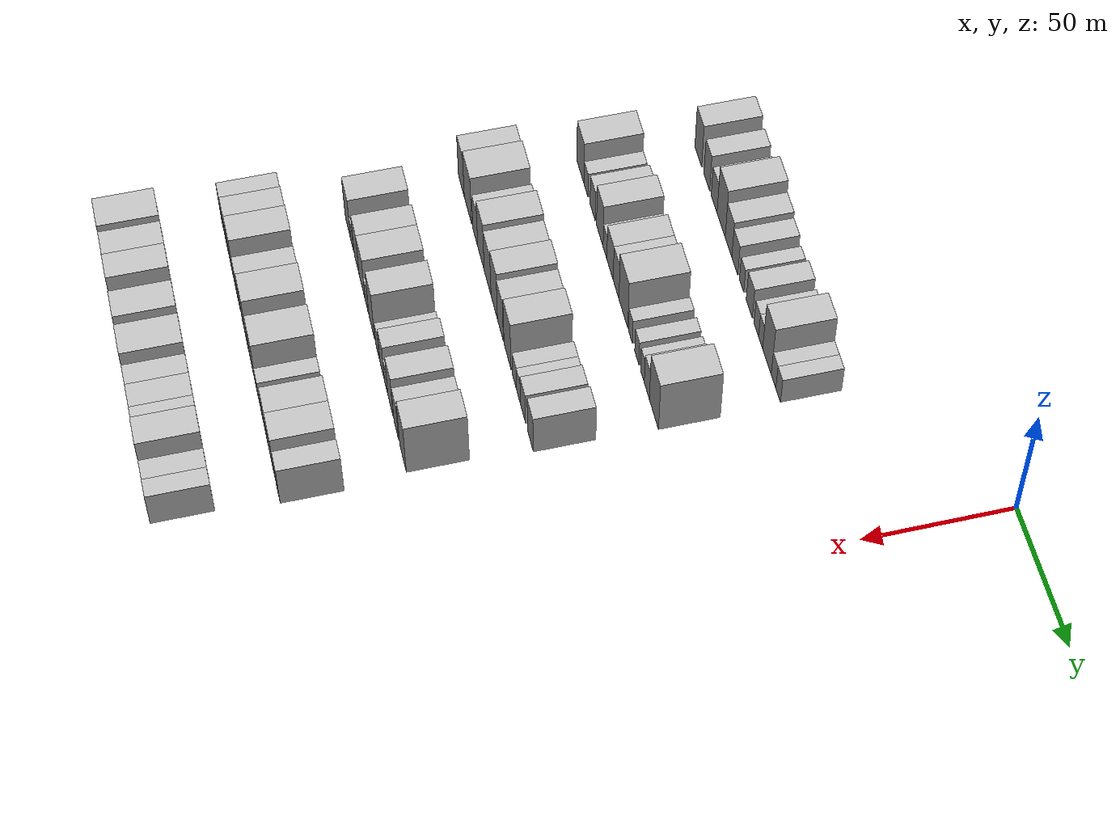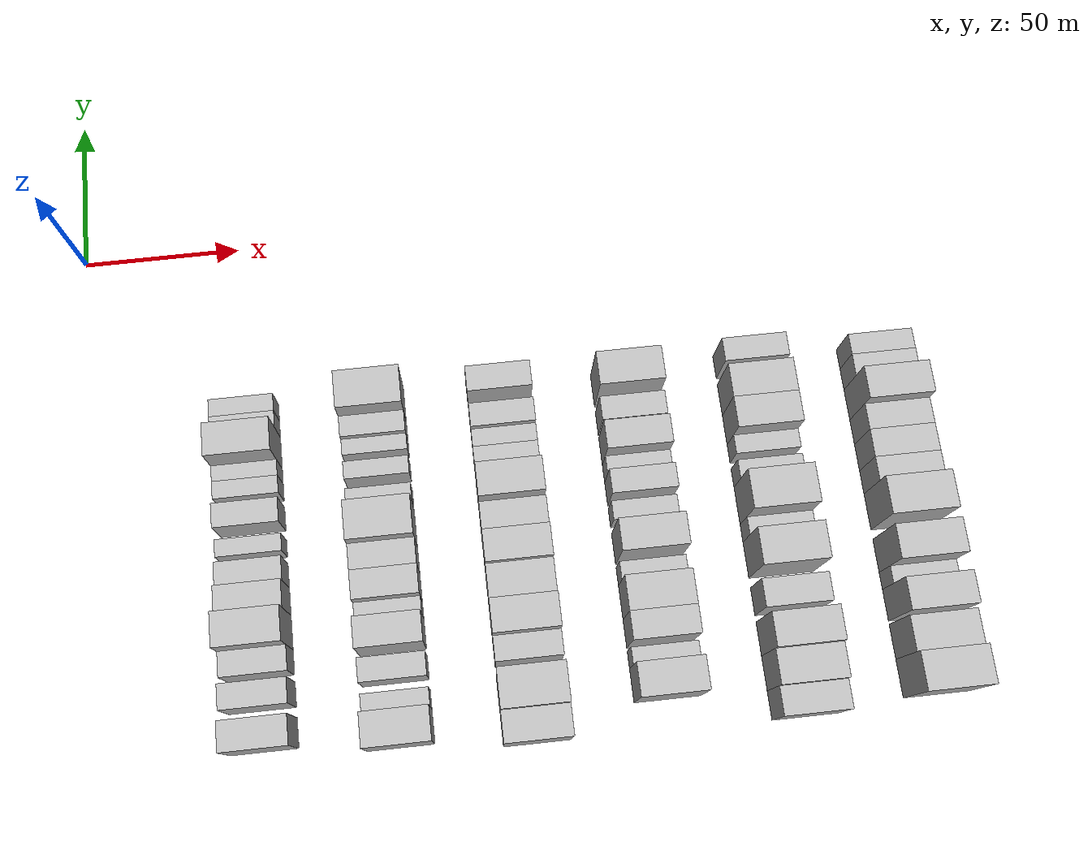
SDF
<sdf version="1.6">
 <world name="default">
  <model name="building_48">
   <static>1</static>
   <pose>50.0000 -156.6965 0 0.000000 0.000000 0.000000</pose>
   <link name="link">
    <pose>0 0 10.50 0 0 0</pose>
    <collision name="collision"><geometry><box><size>20.0000 8.8592 21.0000</size></box></geometry></collision>
    <visual name="visual">
     <cast_shadows>0</cast_shadows>
     <geometry><box><size>20.0000 8.8592 21.0000</size></box></geometry>
     <material>
      <script>
       <uri>model://HANNAS_wall/materials/scripts</uri>
       <uri>model://HANNAS_wall/materials/textures</uri>
       <name>vrc/HANNAS_wall</name>
      </script>
     </material>
    </visual>
   </link>
  </model>
  <model name="building_49">
   <static>1</static>
   <pose>50.0000 -145.5192 0 0.000000 0.000000 0.000000</pose>
   <link name="link">
    <pose>0 0 9.00 0 0 0</pose>
    <collision name="collision"><geometry><box><size>20.0000 7.4954 18.0000</size></box></geometry></collision>
    <visual name="visual">
     <cast_shadows>0</cast_shadows>
     <geometry><box><size>20.0000 7.4954 18.0000</size></box></geometry>
     <material>
      <script>
       <uri>model://HANNAS_wall/materials/scripts</uri>
       <uri>model://HANNAS_wall/materials/textures</uri>
       <name>vrc/HANNAS_wall</name>
      </script>
     </material>
    </visual>
   </link>
  </model>
  <model name="building_50">
   <static>1</static>
   <pose>50.0000 -136.0223 0 0.000000 0.000000 0.000000</pose>
   <link name="link">
    <pose>0 0 7.50 0 0 0</pose>
    <collision name="collision"><geometry><box><size>20.0000 7.4983 15.0000</size></box></geometry></collision>
    <visual name="visual">
     <cast_shadows>0</cast_shadows>
     <geometry><box><size>20.0000 7.4983 15.0000</size></box></geometry>
     <material>
      <script>
       <uri>model://HANNAS_wall/materials/scripts</uri>
       <uri>model://HANNAS_wall/materials/textures</uri>
       <name>vrc/HANNAS_wall</name>
      </script>
     </material>
    </visual>
   </link>
  </model>
  <model name="building_51">
   <static>1</static>
   <pose>50.0000 -127.0845 0 0.000000 0.000000 0.000000</pose>
   <link name="link">
    <pose>0 0 12.00 0 0 0</pose>
    <collision name="collision"><geometry><box><size>20.0000 10.3773 24.0000</size></box></geometry></collision>
    <visual name="visual">
     <cast_shadows>0</cast_shadows>
     <geometry><box><size>20.0000 10.3773 24.0000</size></box></geometry>
     <material>
      <script>
       <uri>model://HANNAS_wall/materials/scripts</uri>
       <uri>model://HANNAS_wall/materials/textures</uri>
       <name>vrc/HANNAS_wall</name>
      </script>
     </material>
    </visual>
   </link>
  </model>
  <model name="building_52">
   <static>1</static>
   <pose>50.0000 -117.6762 0 0.000000 0.000000 0.000000</pose>
   <link name="link">
    <pose>0 0 9.00 0 0 0</pose>
    <collision name="collision"><geometry><box><size>20.0000 8.4391 18.0000</size></box></geometry></collision>
    <visual name="visual">
     <cast_shadows>0</cast_shadows>
     <geometry><box><size>20.0000 8.4391 18.0000</size></box></geometry>
     <material>
      <script>
       <uri>model://HANNAS_wall/materials/scripts</uri>
       <uri>model://HANNAS_wall/materials/textures</uri>
       <name>vrc/HANNAS_wall</name>
      </script>
     </material>
    </visual>
   </link>
  </model>
  <model name="building_53">
   <static>1</static>
   <pose>50.0000 -109.7326 0 0.000000 0.000000 0.000000</pose>
   <link name="link">
    <pose>0 0 7.50 0 0 0</pose>
    <collision name="collision"><geometry><box><size>20.0000 7.4482 15.0000</size></box></geometry></collision>
    <visual name="visual">
     <cast_shadows>0</cast_shadows>
     <geometry><box><size>20.0000 7.4482 15.0000</size></box></geometry>
     <material>
      <script>
       <uri>model://HANNAS_wall/materials/scripts</uri>
       <uri>model://HANNAS_wall/materials/textures</uri>
       <name>vrc/HANNAS_wall</name>
      </script>
     </material>
    </visual>
   </link>
  </model>
  <model name="building_54">
   <static>1</static>
   <pose>50.0000 -101.3346 0 0.000000 0.000000 0.000000</pose>
   <link name="link">
    <pose>0 0 6.00 0 0 0</pose>
    <collision name="collision"><geometry><box><size>20.0000 5.3477 12.0000</size></box></geometry></collision>
    <visual name="visual">
     <cast_shadows>0</cast_shadows>
     <geometry><box><size>20.0000 5.3477 12.0000</size></box></geometry>
     <material>
      <script>
       <uri>model://HANNAS_wall/materials/scripts</uri>
       <uri>model://HANNAS_wall/materials/textures</uri>
       <name>vrc/HANNAS_wall</name>
      </script>
     </material>
    </visual>
   </link>
  </model>
  <model name="building_55">
   <static>1</static>
   <pose>50.0000 -91.9138 0 0.000000 0.000000 0.000000</pose>
   <link name="link">
    <pose>0 0 7.50 0 0 0</pose>
    <collision name="collision"><geometry><box><size>20.0000 7.4938 15.0000</size></box></geometry></collision>
    <visual name="visual">
     <cast_shadows>0</cast_shadows>
     <geometry><box><size>20.0000 7.4938 15.0000</size></box></geometry>
     <material>
      <script>
       <uri>model://HANNAS_wall/materials/scripts</uri>
       <uri>model://HANNAS_wall/materials/textures</uri>
       <name>vrc/HANNAS_wall</name>
      </script>
     </material>
    </visual>
   </link>
  </model>
  <model name="building_56">
   <static>1</static>
   <pose>50.0000 -83.4213 0 0.000000 0.000000 0.000000</pose>
   <link name="link">
    <pose>0 0 6.00 0 0 0</pose>
    <collision name="collision"><geometry><box><size>20.0000 5.4912 12.0000</size></box></geometry></collision>
    <visual name="visual">
     <cast_shadows>0</cast_shadows>
     <geometry><box><size>20.0000 5.4912 12.0000</size></box></geometry>
     <material>
      <script>
       <uri>model://HANNAS_wall/materials/scripts</uri>
       <uri>model://HANNAS_wall/materials/textures</uri>
       <name>vrc/HANNAS_wall</name>
      </script>
     </material>
    </visual>
   </link>
  </model>
  <model name="building_57">
   <static>1</static>
   <pose>50.0000 -78.2083 0 0.000000 0.000000 0.000000</pose>
   <link name="link">
    <pose>0 0 6.00 0 0 0</pose>
    <collision name="collision"><geometry><box><size>20.0000 4.9348 12.0000</size></box></geometry></collision>
    <visual name="visual">
     <cast_shadows>0</cast_shadows>
     <geometry><box><size>20.0000 4.9348 12.0000</size></box></geometry>
     <material>
      <script>
       <uri>model://HANNAS_wall/materials/scripts</uri>
       <uri>model://HANNAS_wall/materials/textures</uri>
       <name>vrc/HANNAS_wall</name>
      </script>
     </material>
    </visual>
   </link>
  </model>
  <model name="building_58">
   <static>1</static>
   <pose>50.0000 -70.6394 0 0.000000 0.000000 0.000000</pose>
   <link name="link">
    <pose>0 0 12.00 0 0 0</pose>
    <collision name="collision"><geometry><box><size>20.0000 10.2029 24.0000</size></box></geometry></collision>
    <visual name="visual">
     <cast_shadows>0</cast_shadows>
     <geometry><box><size>20.0000 10.2029 24.0000</size></box></geometry>
     <material>
      <script>
       <uri>model://HANNAS_wall/materials/scripts</uri>
       <uri>model://HANNAS_wall/materials/textures</uri>
       <name>vrc/HANNAS_wall</name>
      </script>
     </material>
    </visual>
   </link>
  </model>
  <model name="building_59">
   <static>1</static>
   <pose>50.0000 -62.8079 0 0.000000 0.000000 0.000000</pose>
   <link name="link">
    <pose>0 0 6.00 0 0 0</pose>
    <collision name="collision"><geometry><box><size>20.0000 5.4602 12.0000</size></box></geometry></collision>
    <visual name="visual">
     <cast_shadows>0</cast_shadows>
     <geometry><box><size>20.0000 5.4602 12.0000</size></box></geometry>
     <material>
      <script>
       <uri>model://HANNAS_wall/materials/scripts</uri>
       <uri>model://HANNAS_wall/materials/textures</uri>
       <name>vrc/HANNAS_wall</name>
      </script>
     </material>
    </visual>
   </link>
  </model>
  <model name="building_60">
   <static>1</static>
   <pose>50.0000 -57.3016 0 0.000000 0.000000 0.000000</pose>
   <link name="link">
    <pose>0 0 6.00 0 0 0</pose>
    <collision name="collision"><geometry><box><size>20.0000 5.5524 12.0000</size></box></geometry></collision>
    <visual name="visual">
     <cast_shadows>0</cast_shadows>
     <geometry><box><size>20.0000 5.5524 12.0000</size></box></geometry>
     <material>
      <script>
       <uri>model://HANNAS_wall/materials/scripts</uri>
       <uri>model://HANNAS_wall/materials/textures</uri>
       <name>vrc/HANNAS_wall</name>
      </script>
     </material>
    </visual>
   </link>
  </model>
  <model name="building_184">
   <static>1</static>
   <pose>90.0000 -159.0563 0 0.000000 0.000000 0.000000</pose>
   <link name="link">
    <pose>0 0 10.50 0 0 0</pose>
    <collision name="collision"><geometry><box><size>20.0000 10.1364 21.0000</size></box></geometry></collision>
    <visual name="visual">
     <cast_shadows>0</cast_shadows>
     <geometry><box><size>20.0000 10.1364 21.0000</size></box></geometry>
     <material>
      <script>
       <uri>model://HANNAS_wall/materials/scripts</uri>
       <uri>model://HANNAS_wall/materials/textures</uri>
       <name>vrc/HANNAS_wall</name>
      </script>
     </material>
    </visual>
   </link>
  </model>
  <model name="building_185">
   <static>1</static>
   <pose>90.0000 -151.1982 0 0.000000 0.000000 0.000000</pose>
   <link name="link">
    <pose>0 0 6.00 0 0 0</pose>
    <collision name="collision"><geometry><box><size>20.0000 5.5798 12.0000</size></box></geometry></collision>
    <visual name="visual">
     <cast_shadows>0</cast_shadows>
     <geometry><box><size>20.0000 5.5798 12.0000</size></box></geometry>
     <material>
      <script>
       <uri>model://HANNAS_wall/materials/scripts</uri>
       <uri>model://HANNAS_wall/materials/textures</uri>
       <name>vrc/HANNAS_wall</name>
      </script>
     </material>
    </visual>
   </link>
  </model>
  <model name="building_186">
   <static>1</static>
   <pose>90.0000 -141.8414 0 0.000000 0.000000 0.000000</pose>
   <link name="link">
    <pose>0 0 7.50 0 0 0</pose>
    <collision name="collision"><geometry><box><size>20.0000 7.1339 15.0000</size></box></geometry></collision>
    <visual name="visual">
     <cast_shadows>0</cast_shadows>
     <geometry><box><size>20.0000 7.1339 15.0000</size></box></geometry>
     <material>
      <script>
       <uri>model://HANNAS_wall/materials/scripts</uri>
       <uri>model://HANNAS_wall/materials/textures</uri>
       <name>vrc/HANNAS_wall</name>
      </script>
     </material>
    </visual>
   </link>
  </model>
  <model name="building_187">
   <static>1</static>
   <pose>90.0000 -131.6806 0 0.000000 0.000000 0.000000</pose>
   <link name="link">
    <pose>0 0 10.50 0 0 0</pose>
    <collision name="collision"><geometry><box><size>20.0000 9.1877 21.0000</size></box></geometry></collision>
    <visual name="visual">
     <cast_shadows>0</cast_shadows>
     <geometry><box><size>20.0000 9.1877 21.0000</size></box></geometry>
     <material>
      <script>
       <uri>model://HANNAS_wall/materials/scripts</uri>
       <uri>model://HANNAS_wall/materials/textures</uri>
       <name>vrc/HANNAS_wall</name>
      </script>
     </material>
    </visual>
   </link>
  </model>
  <model name="building_188">
   <static>1</static>
   <pose>90.0000 -124.4514 0 0.000000 0.000000 0.000000</pose>
   <link name="link">
    <pose>0 0 6.00 0 0 0</pose>
    <collision name="collision"><geometry><box><size>20.0000 5.2706 12.0000</size></box></geometry></collision>
    <visual name="visual">
     <cast_shadows>0</cast_shadows>
     <geometry><box><size>20.0000 5.2706 12.0000</size></box></geometry>
     <material>
      <script>
       <uri>model://HANNAS_wall/materials/scripts</uri>
       <uri>model://HANNAS_wall/materials/textures</uri>
       <name>vrc/HANNAS_wall</name>
      </script>
     </material>
    </visual>
   </link>
  </model>
  <model name="building_189">
   <static>1</static>
   <pose>90.0000 -117.4483 0 0.000000 0.000000 0.000000</pose>
   <link name="link">
    <pose>0 0 9.00 0 0 0</pose>
    <collision name="collision"><geometry><box><size>20.0000 8.7356 18.0000</size></box></geometry></collision>
    <visual name="visual">
     <cast_shadows>0</cast_shadows>
     <geometry><box><size>20.0000 8.7356 18.0000</size></box></geometry>
     <material>
      <script>
       <uri>model://HANNAS_wall/materials/scripts</uri>
       <uri>model://HANNAS_wall/materials/textures</uri>
       <name>vrc/HANNAS_wall</name>
      </script>
     </material>
    </visual>
   </link>
  </model>
  <model name="building_190">
   <static>1</static>
   <pose>90.0000 -109.1625 0 0.000000 0.000000 0.000000</pose>
   <link name="link">
    <pose>0 0 9.00 0 0 0</pose>
    <collision name="collision"><geometry><box><size>20.0000 7.8360 18.0000</size></box></geometry></collision>
    <visual name="visual">
     <cast_shadows>0</cast_shadows>
     <geometry><box><size>20.0000 7.8360 18.0000</size></box></geometry>
     <material>
      <script>
       <uri>model://HANNAS_wall/materials/scripts</uri>
       <uri>model://HANNAS_wall/materials/textures</uri>
       <name>vrc/HANNAS_wall</name>
      </script>
     </material>
    </visual>
   </link>
  </model>
  <model name="building_191">
   <static>1</static>
   <pose>90.0000 -99.3037 0 0.000000 0.000000 0.000000</pose>
   <link name="link">
    <pose>0 0 12.00 0 0 0</pose>
    <collision name="collision"><geometry><box><size>20.0000 11.8816 24.0000</size></box></geometry></collision>
    <visual name="visual">
     <cast_shadows>0</cast_shadows>
     <geometry><box><size>20.0000 11.8816 24.0000</size></box></geometry>
     <material>
      <script>
       <uri>model://HANNAS_wall/materials/scripts</uri>
       <uri>model://HANNAS_wall/materials/textures</uri>
       <name>vrc/HANNAS_wall</name>
      </script>
     </material>
    </visual>
   </link>
  </model>
  <model name="building_192">
   <static>1</static>
   <pose>90.0000 -89.7608 0 0.000000 0.000000 0.000000</pose>
   <link name="link">
    <pose>0 0 6.00 0 0 0</pose>
    <collision name="collision"><geometry><box><size>20.0000 5.2043 12.0000</size></box></geometry></collision>
    <visual name="visual">
     <cast_shadows>0</cast_shadows>
     <geometry><box><size>20.0000 5.2043 12.0000</size></box></geometry>
     <material>
      <script>
       <uri>model://HANNAS_wall/materials/scripts</uri>
       <uri>model://HANNAS_wall/materials/textures</uri>
       <name>vrc/HANNAS_wall</name>
      </script>
     </material>
    </visual>
   </link>
  </model>
  <model name="building_193">
   <static>1</static>
   <pose>90.0000 -81.3880 0 0.000000 0.000000 0.000000</pose>
   <link name="link">
    <pose>0 0 6.00 0 0 0</pose>
    <collision name="collision"><geometry><box><size>20.0000 5.5413 12.0000</size></box></geometry></collision>
    <visual name="visual">
     <cast_shadows>0</cast_shadows>
     <geometry><box><size>20.0000 5.5413 12.0000</size></box></geometry>
     <material>
      <script>
       <uri>model://HANNAS_wall/materials/scripts</uri>
       <uri>model://HANNAS_wall/materials/textures</uri>
       <name>vrc/HANNAS_wall</name>
      </script>
     </material>
    </visual>
   </link>
  </model>
  <model name="building_194">
   <static>1</static>
   <pose>90.0000 -74.1001 0 0.000000 0.000000 0.000000</pose>
   <link name="link">
    <pose>0 0 6.00 0 0 0</pose>
    <collision name="collision"><geometry><box><size>20.0000 5.0344 12.0000</size></box></geometry></collision>
    <visual name="visual">
     <cast_shadows>0</cast_shadows>
     <geometry><box><size>20.0000 5.0344 12.0000</size></box></geometry>
     <material>
      <script>
       <uri>model://HANNAS_wall/materials/scripts</uri>
       <uri>model://HANNAS_wall/materials/textures</uri>
       <name>vrc/HANNAS_wall</name>
      </script>
     </material>
    </visual>
   </link>
  </model>
  <model name="building_195">
   <static>1</static>
   <pose>90.0000 -68.2853 0 0.000000 0.000000 0.000000</pose>
   <link name="link">
    <pose>0 0 7.50 0 0 0</pose>
    <collision name="collision"><geometry><box><size>20.0000 6.5953 15.0000</size></box></geometry></collision>
    <visual name="visual">
     <cast_shadows>0</cast_shadows>
     <geometry><box><size>20.0000 6.5953 15.0000</size></box></geometry>
     <material>
      <script>
       <uri>model://HANNAS_wall/materials/scripts</uri>
       <uri>model://HANNAS_wall/materials/textures</uri>
       <name>vrc/HANNAS_wall</name>
      </script>
     </material>
    </visual>
   </link>
  </model>
  <model name="building_196">
   <static>1</static>
   <pose>90.0000 -59.1398 0 0.000000 0.000000 0.000000</pose>
   <link name="link">
    <pose>0 0 12.00 0 0 0</pose>
    <collision name="collision"><geometry><box><size>20.0000 11.6957 24.0000</size></box></geometry></collision>
    <visual name="visual">
     <cast_shadows>0</cast_shadows>
     <geometry><box><size>20.0000 11.6957 24.0000</size></box></geometry>
     <material>
      <script>
       <uri>model://HANNAS_wall/materials/scripts</uri>
       <uri>model://HANNAS_wall/materials/textures</uri>
       <name>vrc/HANNAS_wall</name>
      </script>
     </material>
    </visual>
   </link>
  </model>
  <model name="building_320">
   <static>1</static>
   <pose>130.0000 -162.4076 0 0.000000 0.000000 0.000000</pose>
   <link name="link">
    <pose>0 0 10.50 0 0 0</pose>
    <collision name="collision"><geometry><box><size>20.0000 9.3163 21.0000</size></box></geometry></collision>
    <visual name="visual">
     <cast_shadows>0</cast_shadows>
     <geometry><box><size>20.0000 9.3163 21.0000</size></box></geometry>
     <material>
      <script>
       <uri>model://HANNAS_wall/materials/scripts</uri>
       <uri>model://HANNAS_wall/materials/textures</uri>
       <name>vrc/HANNAS_wall</name>
      </script>
     </material>
    </visual>
   </link>
  </model>
  <model name="building_321">
   <static>1</static>
   <pose>130.0000 -151.8766 0 0.000000 0.000000 0.000000</pose>
   <link name="link">
    <pose>0 0 12.00 0 0 0</pose>
    <collision name="collision"><geometry><box><size>20.0000 11.7456 24.0000</size></box></geometry></collision>
    <visual name="visual">
     <cast_shadows>0</cast_shadows>
     <geometry><box><size>20.0000 11.7456 24.0000</size></box></geometry>
     <material>
      <script>
       <uri>model://HANNAS_wall/materials/scripts</uri>
       <uri>model://HANNAS_wall/materials/textures</uri>
       <name>vrc/HANNAS_wall</name>
      </script>
     </material>
    </visual>
   </link>
  </model>
  <model name="building_322">
   <static>1</static>
   <pose>130.0000 -140.2522 0 0.000000 0.000000 0.000000</pose>
   <link name="link">
    <pose>0 0 9.00 0 0 0</pose>
    <collision name="collision"><geometry><box><size>20.0000 7.5033 18.0000</size></box></geometry></collision>
    <visual name="visual">
     <cast_shadows>0</cast_shadows>
     <geometry><box><size>20.0000 7.5033 18.0000</size></box></geometry>
     <material>
      <script>
       <uri>model://HANNAS_wall/materials/scripts</uri>
       <uri>model://HANNAS_wall/materials/textures</uri>
       <name>vrc/HANNAS_wall</name>
      </script>
     </material>
    </visual>
   </link>
  </model>
  <model name="building_323">
   <static>1</static>
   <pose>130.0000 -131.4581 0 0.000000 0.000000 0.000000</pose>
   <link name="link">
    <pose>0 0 12.00 0 0 0</pose>
    <collision name="collision"><geometry><box><size>20.0000 10.0850 24.0000</size></box></geometry></collision>
    <visual name="visual">
     <cast_shadows>0</cast_shadows>
     <geometry><box><size>20.0000 10.0850 24.0000</size></box></geometry>
     <material>
      <script>
       <uri>model://HANNAS_wall/materials/scripts</uri>
       <uri>model://HANNAS_wall/materials/textures</uri>
       <name>vrc/HANNAS_wall</name>
      </script>
     </material>
    </visual>
   </link>
  </model>
  <model name="building_324">
   <static>1</static>
   <pose>130.0000 -121.1892 0 0.000000 0.000000 0.000000</pose>
   <link name="link">
    <pose>0 0 10.50 0 0 0</pose>
    <collision name="collision"><geometry><box><size>20.0000 10.4527 21.0000</size></box></geometry></collision>
    <visual name="visual">
     <cast_shadows>0</cast_shadows>
     <geometry><box><size>20.0000 10.4527 21.0000</size></box></geometry>
     <material>
      <script>
       <uri>model://HANNAS_wall/materials/scripts</uri>
       <uri>model://HANNAS_wall/materials/textures</uri>
       <name>vrc/HANNAS_wall</name>
      </script>
     </material>
    </visual>
   </link>
  </model>
  <model name="building_325">
   <static>1</static>
   <pose>130.0000 -111.1272 0 0.000000 0.000000 0.000000</pose>
   <link name="link">
    <pose>0 0 12.00 0 0 0</pose>
    <collision name="collision"><geometry><box><size>20.0000 9.6712 24.0000</size></box></geometry></collision>
    <visual name="visual">
     <cast_shadows>0</cast_shadows>
     <geometry><box><size>20.0000 9.6712 24.0000</size></box></geometry>
     <material>
      <script>
       <uri>model://HANNAS_wall/materials/scripts</uri>
       <uri>model://HANNAS_wall/materials/textures</uri>
       <name>vrc/HANNAS_wall</name>
      </script>
     </material>
    </visual>
   </link>
  </model>
  <model name="building_326">
   <static>1</static>
   <pose>130.0000 -101.8552 0 0.000000 0.000000 0.000000</pose>
   <link name="link">
    <pose>0 0 10.50 0 0 0</pose>
    <collision name="collision"><geometry><box><size>20.0000 8.8728 21.0000</size></box></geometry></collision>
    <visual name="visual">
     <cast_shadows>0</cast_shadows>
     <geometry><box><size>20.0000 8.8728 21.0000</size></box></geometry>
     <material>
      <script>
       <uri>model://HANNAS_wall/materials/scripts</uri>
       <uri>model://HANNAS_wall/materials/textures</uri>
       <name>vrc/HANNAS_wall</name>
      </script>
     </material>
    </visual>
   </link>
  </model>
  <model name="building_327">
   <static>1</static>
   <pose>130.0000 -91.2321 0 0.000000 0.000000 0.000000</pose>
   <link name="link">
    <pose>0 0 12.00 0 0 0</pose>
    <collision name="collision"><geometry><box><size>20.0000 10.3734 24.0000</size></box></geometry></collision>
    <visual name="visual">
     <cast_shadows>0</cast_shadows>
     <geometry><box><size>20.0000 10.3734 24.0000</size></box></geometry>
     <material>
      <script>
       <uri>model://HANNAS_wall/materials/scripts</uri>
       <uri>model://HANNAS_wall/materials/textures</uri>
       <name>vrc/HANNAS_wall</name>
      </script>
     </material>
    </visual>
   </link>
  </model>
  <model name="building_328">
   <static>1</static>
   <pose>130.0000 -81.0476 0 0.000000 0.000000 0.000000</pose>
   <link name="link">
    <pose>0 0 6.00 0 0 0</pose>
    <collision name="collision"><geometry><box><size>20.0000 5.9956 12.0000</size></box></geometry></collision>
    <visual name="visual">
     <cast_shadows>0</cast_shadows>
     <geometry><box><size>20.0000 5.9956 12.0000</size></box></geometry>
     <material>
      <script>
       <uri>model://HANNAS_wall/materials/scripts</uri>
       <uri>model://HANNAS_wall/materials/textures</uri>
       <name>vrc/HANNAS_wall</name>
      </script>
     </material>
    </visual>
   </link>
  </model>
  <model name="building_329">
   <static>1</static>
   <pose>130.0000 -75.2798 0 0.000000 0.000000 0.000000</pose>
   <link name="link">
    <pose>0 0 6.00 0 0 0</pose>
    <collision name="collision"><geometry><box><size>20.0000 5.5398 12.0000</size></box></geometry></collision>
    <visual name="visual">
     <cast_shadows>0</cast_shadows>
     <geometry><box><size>20.0000 5.5398 12.0000</size></box></geometry>
     <material>
      <script>
       <uri>model://HANNAS_wall/materials/scripts</uri>
       <uri>model://HANNAS_wall/materials/textures</uri>
       <name>vrc/HANNAS_wall</name>
      </script>
     </material>
    </visual>
   </link>
  </model>
  <model name="building_330">
   <static>1</static>
   <pose>130.0000 -68.7903 0 0.000000 0.000000 0.000000</pose>
   <link name="link">
    <pose>0 0 7.50 0 0 0</pose>
    <collision name="collision"><geometry><box><size>20.0000 7.4392 15.0000</size></box></geometry></collision>
    <visual name="visual">
     <cast_shadows>0</cast_shadows>
     <geometry><box><size>20.0000 7.4392 15.0000</size></box></geometry>
     <material>
      <script>
       <uri>model://HANNAS_wall/materials/scripts</uri>
       <uri>model://HANNAS_wall/materials/textures</uri>
       <name>vrc/HANNAS_wall</name>
      </script>
     </material>
    </visual>
   </link>
  </model>
  <model name="building_331">
   <static>1</static>
   <pose>130.0000 -58.0516 0 0.000000 0.000000 0.000000</pose>
   <link name="link">
    <pose>0 0 9.00 0 0 0</pose>
    <collision name="collision"><geometry><box><size>20.0000 8.0383 18.0000</size></box></geometry></collision>
    <visual name="visual">
     <cast_shadows>0</cast_shadows>
     <geometry><box><size>20.0000 8.0383 18.0000</size></box></geometry>
     <material>
      <script>
       <uri>model://HANNAS_wall/materials/scripts</uri>
       <uri>model://HANNAS_wall/materials/textures</uri>
       <name>vrc/HANNAS_wall</name>
      </script>
     </material>
    </visual>
   </link>
  </model>
  <model name="building_456">
   <static>1</static>
   <pose>170.0000 -153.4964 0 0.000000 0.000000 0.000000</pose>
   <link name="link">
    <pose>0 0 10.50 0 0 0</pose>
    <collision name="collision"><geometry><box><size>20.0000 10.0334 21.0000</size></box></geometry></collision>
    <visual name="visual">
     <cast_shadows>0</cast_shadows>
     <geometry><box><size>20.0000 10.0334 21.0000</size></box></geometry>
     <material>
      <script>
       <uri>model://HANNAS_wall/materials/scripts</uri>
       <uri>model://HANNAS_wall/materials/textures</uri>
       <name>vrc/HANNAS_wall</name>
      </script>
     </material>
    </visual>
   </link>
  </model>
  <model name="building_457">
   <static>1</static>
   <pose>170.0000 -145.9151 0 0.000000 0.000000 0.000000</pose>
   <link name="link">
    <pose>0 0 6.00 0 0 0</pose>
    <collision name="collision"><geometry><box><size>20.0000 5.1292 12.0000</size></box></geometry></collision>
    <visual name="visual">
     <cast_shadows>0</cast_shadows>
     <geometry><box><size>20.0000 5.1292 12.0000</size></box></geometry>
     <material>
      <script>
       <uri>model://HANNAS_wall/materials/scripts</uri>
       <uri>model://HANNAS_wall/materials/textures</uri>
       <name>vrc/HANNAS_wall</name>
      </script>
     </material>
    </visual>
   </link>
  </model>
  <model name="building_458">
   <static>1</static>
   <pose>170.0000 -138.1336 0 0.000000 0.000000 0.000000</pose>
   <link name="link">
    <pose>0 0 10.50 0 0 0</pose>
    <collision name="collision"><geometry><box><size>20.0000 8.4337 21.0000</size></box></geometry></collision>
    <visual name="visual">
     <cast_shadows>0</cast_shadows>
     <geometry><box><size>20.0000 8.4337 21.0000</size></box></geometry>
     <material>
      <script>
       <uri>model://HANNAS_wall/materials/scripts</uri>
       <uri>model://HANNAS_wall/materials/textures</uri>
       <name>vrc/HANNAS_wall</name>
      </script>
     </material>
    </visual>
   </link>
  </model>
  <model name="building_459">
   <static>1</static>
   <pose>170.0000 -128.6972 0 0.000000 0.000000 0.000000</pose>
   <link name="link">
    <pose>0 0 10.50 0 0 0</pose>
    <collision name="collision"><geometry><box><size>20.0000 10.4393 21.0000</size></box></geometry></collision>
    <visual name="visual">
     <cast_shadows>0</cast_shadows>
     <geometry><box><size>20.0000 10.4393 21.0000</size></box></geometry>
     <material>
      <script>
       <uri>model://HANNAS_wall/materials/scripts</uri>
       <uri>model://HANNAS_wall/materials/textures</uri>
       <name>vrc/HANNAS_wall</name>
      </script>
     </material>
    </visual>
   </link>
  </model>
  <model name="building_460">
   <static>1</static>
   <pose>170.0000 -120.6895 0 0.000000 0.000000 0.000000</pose>
   <link name="link">
    <pose>0 0 6.00 0 0 0</pose>
    <collision name="collision"><geometry><box><size>20.0000 5.5762 12.0000</size></box></geometry></collision>
    <visual name="visual">
     <cast_shadows>0</cast_shadows>
     <geometry><box><size>20.0000 5.5762 12.0000</size></box></geometry>
     <material>
      <script>
       <uri>model://HANNAS_wall/materials/scripts</uri>
       <uri>model://HANNAS_wall/materials/textures</uri>
       <name>vrc/HANNAS_wall</name>
      </script>
     </material>
    </visual>
   </link>
  </model>
  <model name="building_461">
   <static>1</static>
   <pose>170.0000 -112.0757 0 0.000000 0.000000 0.000000</pose>
   <link name="link">
    <pose>0 0 12.00 0 0 0</pose>
    <collision name="collision"><geometry><box><size>20.0000 9.6514 24.0000</size></box></geometry></collision>
    <visual name="visual">
     <cast_shadows>0</cast_shadows>
     <geometry><box><size>20.0000 9.6514 24.0000</size></box></geometry>
     <material>
      <script>
       <uri>model://HANNAS_wall/materials/scripts</uri>
       <uri>model://HANNAS_wall/materials/textures</uri>
       <name>vrc/HANNAS_wall</name>
      </script>
     </material>
    </visual>
   </link>
  </model>
  <model name="building_462">
   <static>1</static>
   <pose>170.0000 -102.3024 0 0.000000 0.000000 0.000000</pose>
   <link name="link">
    <pose>0 0 6.00 0 0 0</pose>
    <collision name="collision"><geometry><box><size>20.0000 5.8953 12.0000</size></box></geometry></collision>
    <visual name="visual">
     <cast_shadows>0</cast_shadows>
     <geometry><box><size>20.0000 5.8953 12.0000</size></box></geometry>
     <material>
      <script>
       <uri>model://HANNAS_wall/materials/scripts</uri>
       <uri>model://HANNAS_wall/materials/textures</uri>
       <name>vrc/HANNAS_wall</name>
      </script>
     </material>
    </visual>
   </link>
  </model>
  <model name="building_463">
   <static>1</static>
   <pose>170.0000 -94.6328 0 0.000000 0.000000 0.000000</pose>
   <link name="link">
    <pose>0 0 9.00 0 0 0</pose>
    <collision name="collision"><geometry><box><size>20.0000 7.4439 18.0000</size></box></geometry></collision>
    <visual name="visual">
     <cast_shadows>0</cast_shadows>
     <geometry><box><size>20.0000 7.4439 18.0000</size></box></geometry>
     <material>
      <script>
       <uri>model://HANNAS_wall/materials/scripts</uri>
       <uri>model://HANNAS_wall/materials/textures</uri>
       <name>vrc/HANNAS_wall</name>
      </script>
     </material>
    </visual>
   </link>
  </model>
  <model name="building_464">
   <static>1</static>
   <pose>170.0000 -88.0980 0 0.000000 0.000000 0.000000</pose>
   <link name="link">
    <pose>0 0 6.00 0 0 0</pose>
    <collision name="collision"><geometry><box><size>20.0000 5.6257 12.0000</size></box></geometry></collision>
    <visual name="visual">
     <cast_shadows>0</cast_shadows>
     <geometry><box><size>20.0000 5.6257 12.0000</size></box></geometry>
     <material>
      <script>
       <uri>model://HANNAS_wall/materials/scripts</uri>
       <uri>model://HANNAS_wall/materials/textures</uri>
       <name>vrc/HANNAS_wall</name>
      </script>
     </material>
    </visual>
   </link>
  </model>
  <model name="building_465">
   <static>1</static>
   <pose>170.0000 -80.8571 0 0.000000 0.000000 0.000000</pose>
   <link name="link">
    <pose>0 0 10.50 0 0 0</pose>
    <collision name="collision"><geometry><box><size>20.0000 8.8560 21.0000</size></box></geometry></collision>
    <visual name="visual">
     <cast_shadows>0</cast_shadows>
     <geometry><box><size>20.0000 8.8560 21.0000</size></box></geometry>
     <material>
      <script>
       <uri>model://HANNAS_wall/materials/scripts</uri>
       <uri>model://HANNAS_wall/materials/textures</uri>
       <name>vrc/HANNAS_wall</name>
      </script>
     </material>
    </visual>
   </link>
  </model>
  <model name="building_466">
   <static>1</static>
   <pose>170.0000 -71.7392 0 0.000000 0.000000 0.000000</pose>
   <link name="link">
    <pose>0 0 9.00 0 0 0</pose>
    <collision name="collision"><geometry><box><size>20.0000 7.3798 18.0000</size></box></geometry></collision>
    <visual name="visual">
     <cast_shadows>0</cast_shadows>
     <geometry><box><size>20.0000 7.3798 18.0000</size></box></geometry>
     <material>
      <script>
       <uri>model://HANNAS_wall/materials/scripts</uri>
       <uri>model://HANNAS_wall/materials/textures</uri>
       <name>vrc/HANNAS_wall</name>
      </script>
     </material>
    </visual>
   </link>
  </model>
  <model name="building_467">
   <static>1</static>
   <pose>170.0000 -60.8288 0 0.000000 0.000000 0.000000</pose>
   <link name="link">
    <pose>0 0 12.00 0 0 0</pose>
    <collision name="collision"><geometry><box><size>20.0000 10.4409 24.0000</size></box></geometry></collision>
    <visual name="visual">
     <cast_shadows>0</cast_shadows>
     <geometry><box><size>20.0000 10.4409 24.0000</size></box></geometry>
     <material>
      <script>
       <uri>model://HANNAS_wall/materials/scripts</uri>
       <uri>model://HANNAS_wall/materials/textures</uri>
       <name>vrc/HANNAS_wall</name>
      </script>
     </material>
    </visual>
   </link>
  </model>
  <model name="building_595">
   <static>1</static>
   <pose>210.0000 -163.5249 0 0.000000 0.000000 0.000000</pose>
   <link name="link">
    <pose>0 0 9.00 0 0 0</pose>
    <collision name="collision"><geometry><box><size>20.0000 8.5728 18.0000</size></box></geometry></collision>
    <visual name="visual">
     <cast_shadows>0</cast_shadows>
     <geometry><box><size>20.0000 8.5728 18.0000</size></box></geometry>
     <material>
      <script>
       <uri>model://HANNAS_wall/materials/scripts</uri>
       <uri>model://HANNAS_wall/materials/textures</uri>
       <name>vrc/HANNAS_wall</name>
      </script>
     </material>
    </visual>
   </link>
  </model>
  <model name="building_596">
   <static>1</static>
   <pose>210.0000 -154.0867 0 0.000000 0.000000 0.000000</pose>
   <link name="link">
    <pose>0 0 10.50 0 0 0</pose>
    <collision name="collision"><geometry><box><size>20.0000 10.3036 21.0000</size></box></geometry></collision>
    <visual name="visual">
     <cast_shadows>0</cast_shadows>
     <geometry><box><size>20.0000 10.3036 21.0000</size></box></geometry>
     <material>
      <script>
       <uri>model://HANNAS_wall/materials/scripts</uri>
       <uri>model://HANNAS_wall/materials/textures</uri>
       <name>vrc/HANNAS_wall</name>
      </script>
     </material>
    </visual>
   </link>
  </model>
  <model name="building_597">
   <static>1</static>
   <pose>210.0000 -143.8421 0 0.000000 0.000000 0.000000</pose>
   <link name="link">
    <pose>0 0 12.00 0 0 0</pose>
    <collision name="collision"><geometry><box><size>20.0000 10.1857 24.0000</size></box></geometry></collision>
    <visual name="visual">
     <cast_shadows>0</cast_shadows>
     <geometry><box><size>20.0000 10.1857 24.0000</size></box></geometry>
     <material>
      <script>
       <uri>model://HANNAS_wall/materials/scripts</uri>
       <uri>model://HANNAS_wall/materials/textures</uri>
       <name>vrc/HANNAS_wall</name>
      </script>
     </material>
    </visual>
   </link>
  </model>
  <model name="building_598">
   <static>1</static>
   <pose>210.0000 -132.5135 0 0.000000 0.000000 0.000000</pose>
   <link name="link">
    <pose>0 0 9.00 0 0 0</pose>
    <collision name="collision"><geometry><box><size>20.0000 8.4713 18.0000</size></box></geometry></collision>
    <visual name="visual">
     <cast_shadows>0</cast_shadows>
     <geometry><box><size>20.0000 8.4713 18.0000</size></box></geometry>
     <material>
      <script>
       <uri>model://HANNAS_wall/materials/scripts</uri>
       <uri>model://HANNAS_wall/materials/textures</uri>
       <name>vrc/HANNAS_wall</name>
      </script>
     </material>
    </visual>
   </link>
  </model>
  <model name="building_599">
   <static>1</static>
   <pose>210.0000 -119.6856 0 0.000000 0.000000 0.000000</pose>
   <link name="link">
    <pose>0 0 12.00 0 0 0</pose>
    <collision name="collision"><geometry><box><size>20.0000 11.1845 24.0000</size></box></geometry></collision>
    <visual name="visual">
     <cast_shadows>0</cast_shadows>
     <geometry><box><size>20.0000 11.1845 24.0000</size></box></geometry>
     <material>
      <script>
       <uri>model://HANNAS_wall/materials/scripts</uri>
       <uri>model://HANNAS_wall/materials/textures</uri>
       <name>vrc/HANNAS_wall</name>
      </script>
     </material>
    </visual>
   </link>
  </model>
  <model name="building_600">
   <static>1</static>
   <pose>210.0000 -111.3207 0 0.000000 0.000000 0.000000</pose>
   <link name="link">
    <pose>0 0 6.00 0 0 0</pose>
    <collision name="collision"><geometry><box><size>20.0000 5.5453 12.0000</size></box></geometry></collision>
    <visual name="visual">
     <cast_shadows>0</cast_shadows>
     <geometry><box><size>20.0000 5.5453 12.0000</size></box></geometry>
     <material>
      <script>
       <uri>model://HANNAS_wall/materials/scripts</uri>
       <uri>model://HANNAS_wall/materials/textures</uri>
       <name>vrc/HANNAS_wall</name>
      </script>
     </material>
    </visual>
   </link>
  </model>
  <model name="building_601">
   <static>1</static>
   <pose>210.0000 -102.5831 0 0.000000 0.000000 0.000000</pose>
   <link name="link">
    <pose>0 0 12.00 0 0 0</pose>
    <collision name="collision"><geometry><box><size>20.0000 11.9298 24.0000</size></box></geometry></collision>
    <visual name="visual">
     <cast_shadows>0</cast_shadows>
     <geometry><box><size>20.0000 11.9298 24.0000</size></box></geometry>
     <material>
      <script>
       <uri>model://HANNAS_wall/materials/scripts</uri>
       <uri>model://HANNAS_wall/materials/textures</uri>
       <name>vrc/HANNAS_wall</name>
      </script>
     </material>
    </visual>
   </link>
  </model>
  <model name="building_602">
   <static>1</static>
   <pose>210.0000 -93.6745 0 0.000000 0.000000 0.000000</pose>
   <link name="link">
    <pose>0 0 6.00 0 0 0</pose>
    <collision name="collision"><geometry><box><size>20.0000 5.8874 12.0000</size></box></geometry></collision>
    <visual name="visual">
     <cast_shadows>0</cast_shadows>
     <geometry><box><size>20.0000 5.8874 12.0000</size></box></geometry>
     <material>
      <script>
       <uri>model://HANNAS_wall/materials/scripts</uri>
       <uri>model://HANNAS_wall/materials/textures</uri>
       <name>vrc/HANNAS_wall</name>
      </script>
     </material>
    </visual>
   </link>
  </model>
  <model name="building_603">
   <static>1</static>
   <pose>210.0000 -85.7874 0 0.000000 0.000000 0.000000</pose>
   <link name="link">
    <pose>0 0 6.00 0 0 0</pose>
    <collision name="collision"><geometry><box><size>20.0000 5.8869 12.0000</size></box></geometry></collision>
    <visual name="visual">
     <cast_shadows>0</cast_shadows>
     <geometry><box><size>20.0000 5.8869 12.0000</size></box></geometry>
     <material>
      <script>
       <uri>model://HANNAS_wall/materials/scripts</uri>
       <uri>model://HANNAS_wall/materials/textures</uri>
       <name>vrc/HANNAS_wall</name>
      </script>
     </material>
    </visual>
   </link>
  </model>
  <model name="building_604">
   <static>1</static>
   <pose>210.0000 -78.0169 0 0.000000 0.000000 0.000000</pose>
   <link name="link">
    <pose>0 0 10.50 0 0 0</pose>
    <collision name="collision"><geometry><box><size>20.0000 9.6542 21.0000</size></box></geometry></collision>
    <visual name="visual">
     <cast_shadows>0</cast_shadows>
     <geometry><box><size>20.0000 9.6542 21.0000</size></box></geometry>
     <material>
      <script>
       <uri>model://HANNAS_wall/materials/scripts</uri>
       <uri>model://HANNAS_wall/materials/textures</uri>
       <name>vrc/HANNAS_wall</name>
      </script>
     </material>
    </visual>
   </link>
  </model>
  <model name="building_605">
   <static>1</static>
   <pose>210.0000 -67.9466 0 0.000000 0.000000 0.000000</pose>
   <link name="link">
    <pose>0 0 10.50 0 0 0</pose>
    <collision name="collision"><geometry><box><size>20.0000 10.4864 21.0000</size></box></geometry></collision>
    <visual name="visual">
     <cast_shadows>0</cast_shadows>
     <geometry><box><size>20.0000 10.4864 21.0000</size></box></geometry>
     <material>
      <script>
       <uri>model://HANNAS_wall/materials/scripts</uri>
       <uri>model://HANNAS_wall/materials/textures</uri>
       <name>vrc/HANNAS_wall</name>
      </script>
     </material>
    </visual>
   </link>
  </model>
  <model name="building_606">
   <static>1</static>
   <pose>210.0000 -57.0097 0 0.000000 0.000000 0.000000</pose>
   <link name="link">
    <pose>0 0 9.00 0 0 0</pose>
    <collision name="collision"><geometry><box><size>20.0000 7.3874 18.0000</size></box></geometry></collision>
    <visual name="visual">
     <cast_shadows>0</cast_shadows>
     <geometry><box><size>20.0000 7.3874 18.0000</size></box></geometry>
     <material>
      <script>
       <uri>model://HANNAS_wall/materials/scripts</uri>
       <uri>model://HANNAS_wall/materials/textures</uri>
       <name>vrc/HANNAS_wall</name>
      </script>
     </material>
    </visual>
   </link>
  </model>
  <model name="building_730">
   <static>1</static>
   <pose>250.0000 -159.8354 0 0.000000 0.000000 0.000000</pose>
   <link name="link">
    <pose>0 0 12.00 0 0 0</pose>
    <collision name="collision"><geometry><box><size>20.0000 11.4134 24.0000</size></box></geometry></collision>
    <visual name="visual">
     <cast_shadows>0</cast_shadows>
     <geometry><box><size>20.0000 11.4134 24.0000</size></box></geometry>
     <material>
      <script>
       <uri>model://HANNAS_wall/materials/scripts</uri>
       <uri>model://HANNAS_wall/materials/textures</uri>
       <name>vrc/HANNAS_wall</name>
      </script>
     </material>
    </visual>
   </link>
  </model>
  <model name="building_731">
   <static>1</static>
   <pose>250.0000 -148.8811 0 0.000000 0.000000 0.000000</pose>
   <link name="link">
    <pose>0 0 10.50 0 0 0</pose>
    <collision name="collision"><geometry><box><size>20.0000 10.4950 21.0000</size></box></geometry></collision>
    <visual name="visual">
     <cast_shadows>0</cast_shadows>
     <geometry><box><size>20.0000 10.4950 21.0000</size></box></geometry>
     <material>
      <script>
       <uri>model://HANNAS_wall/materials/scripts</uri>
       <uri>model://HANNAS_wall/materials/textures</uri>
       <name>vrc/HANNAS_wall</name>
      </script>
     </material>
    </visual>
   </link>
  </model>
  <model name="building_732">
   <static>1</static>
   <pose>250.0000 -137.8163 0 0.000000 0.000000 0.000000</pose>
   <link name="link">
    <pose>0 0 12.00 0 0 0</pose>
    <collision name="collision"><geometry><box><size>20.0000 9.6347 24.0000</size></box></geometry></collision>
    <visual name="visual">
     <cast_shadows>0</cast_shadows>
     <geometry><box><size>20.0000 9.6347 24.0000</size></box></geometry>
     <material>
      <script>
       <uri>model://HANNAS_wall/materials/scripts</uri>
       <uri>model://HANNAS_wall/materials/textures</uri>
       <name>vrc/HANNAS_wall</name>
      </script>
     </material>
    </visual>
   </link>
  </model>
  <model name="building_733">
   <static>1</static>
   <pose>250.0000 -130.3504 0 0.000000 0.000000 0.000000</pose>
   <link name="link">
    <pose>0 0 6.00 0 0 0</pose>
    <collision name="collision"><geometry><box><size>20.0000 5.2971 12.0000</size></box></geometry></collision>
    <visual name="visual">
     <cast_shadows>0</cast_shadows>
     <geometry><box><size>20.0000 5.2971 12.0000</size></box></geometry>
     <material>
      <script>
       <uri>model://HANNAS_wall/materials/scripts</uri>
       <uri>model://HANNAS_wall/materials/textures</uri>
       <name>vrc/HANNAS_wall</name>
      </script>
     </material>
    </visual>
   </link>
  </model>
  <model name="building_734">
   <static>1</static>
   <pose>250.0000 -122.5529 0 0.000000 0.000000 0.000000</pose>
   <link name="link">
    <pose>0 0 12.00 0 0 0</pose>
    <collision name="collision"><geometry><box><size>20.0000 10.2979 24.0000</size></box></geometry></collision>
    <visual name="visual">
     <cast_shadows>0</cast_shadows>
     <geometry><box><size>20.0000 10.2979 24.0000</size></box></geometry>
     <material>
      <script>
       <uri>model://HANNAS_wall/materials/scripts</uri>
       <uri>model://HANNAS_wall/materials/textures</uri>
       <name>vrc/HANNAS_wall</name>
      </script>
     </material>
    </visual>
   </link>
  </model>
  <model name="building_735">
   <static>1</static>
   <pose>250.0000 -108.6839 0 0.000000 0.000000 0.000000</pose>
   <link name="link">
    <pose>0 0 12.00 0 0 0</pose>
    <collision name="collision"><geometry><box><size>20.0000 11.4401 24.0000</size></box></geometry></collision>
    <visual name="visual">
     <cast_shadows>0</cast_shadows>
     <geometry><box><size>20.0000 11.4401 24.0000</size></box></geometry>
     <material>
      <script>
       <uri>model://HANNAS_wall/materials/scripts</uri>
       <uri>model://HANNAS_wall/materials/textures</uri>
       <name>vrc/HANNAS_wall</name>
      </script>
     </material>
    </visual>
   </link>
  </model>
  <model name="building_736">
   <static>1</static>
   <pose>250.0000 -99.2517 0 0.000000 0.000000 0.000000</pose>
   <link name="link">
    <pose>0 0 9.00 0 0 0</pose>
    <collision name="collision"><geometry><box><size>20.0000 7.4241 18.0000</size></box></geometry></collision>
    <visual name="visual">
     <cast_shadows>0</cast_shadows>
     <geometry><box><size>20.0000 7.4241 18.0000</size></box></geometry>
     <material>
      <script>
       <uri>model://HANNAS_wall/materials/scripts</uri>
       <uri>model://HANNAS_wall/materials/textures</uri>
       <name>vrc/HANNAS_wall</name>
      </script>
     </material>
    </visual>
   </link>
  </model>
  <model name="building_737">
   <static>1</static>
   <pose>250.0000 -91.2053 0 0.000000 0.000000 0.000000</pose>
   <link name="link">
    <pose>0 0 9.00 0 0 0</pose>
    <collision name="collision"><geometry><box><size>20.0000 8.6687 18.0000</size></box></geometry></collision>
    <visual name="visual">
     <cast_shadows>0</cast_shadows>
     <geometry><box><size>20.0000 8.6687 18.0000</size></box></geometry>
     <material>
      <script>
       <uri>model://HANNAS_wall/materials/scripts</uri>
       <uri>model://HANNAS_wall/materials/textures</uri>
       <name>vrc/HANNAS_wall</name>
      </script>
     </material>
    </visual>
   </link>
  </model>
  <model name="building_738">
   <static>1</static>
   <pose>250.0000 -82.8424 0 0.000000 0.000000 0.000000</pose>
   <link name="link">
    <pose>0 0 9.00 0 0 0</pose>
    <collision name="collision"><geometry><box><size>20.0000 8.0572 18.0000</size></box></geometry></collision>
    <visual name="visual">
     <cast_shadows>0</cast_shadows>
     <geometry><box><size>20.0000 8.0572 18.0000</size></box></geometry>
     <material>
      <script>
       <uri>model://HANNAS_wall/materials/scripts</uri>
       <uri>model://HANNAS_wall/materials/textures</uri>
       <name>vrc/HANNAS_wall</name>
      </script>
     </material>
    </visual>
   </link>
  </model>
  <model name="building_739">
   <static>1</static>
   <pose>250.0000 -73.7799 0 0.000000 0.000000 0.000000</pose>
   <link name="link">
    <pose>0 0 12.00 0 0 0</pose>
    <collision name="collision"><geometry><box><size>20.0000 10.0678 24.0000</size></box></geometry></collision>
    <visual name="visual">
     <cast_shadows>0</cast_shadows>
     <geometry><box><size>20.0000 10.0678 24.0000</size></box></geometry>
     <material>
      <script>
       <uri>model://HANNAS_wall/materials/scripts</uri>
       <uri>model://HANNAS_wall/materials/textures</uri>
       <name>vrc/HANNAS_wall</name>
      </script>
     </material>
    </visual>
   </link>
  </model>
  <model name="building_740">
   <static>1</static>
   <pose>250.0000 -65.2241 0 0.000000 0.000000 0.000000</pose>
   <link name="link">
    <pose>0 0 7.50 0 0 0</pose>
    <collision name="collision"><geometry><box><size>20.0000 7.0437 15.0000</size></box></geometry></collision>
    <visual name="visual">
     <cast_shadows>0</cast_shadows>
     <geometry><box><size>20.0000 7.0437 15.0000</size></box></geometry>
     <material>
      <script>
       <uri>model://HANNAS_wall/materials/scripts</uri>
       <uri>model://HANNAS_wall/materials/textures</uri>
       <name>vrc/HANNAS_wall</name>
      </script>
     </material>
    </visual>
   </link>
  </model>
  <model name="building_741">
   <static>1</static>
   <pose>250.0000 -58.4236 0 0.000000 0.000000 0.000000</pose>
   <link name="link">
    <pose>0 0 7.50 0 0 0</pose>
    <collision name="collision"><geometry><box><size>20.0000 6.5574 15.0000</size></box></geometry></collision>
    <visual name="visual">
     <cast_shadows>0</cast_shadows>
     <geometry><box><size>20.0000 6.5574 15.0000</size></box></geometry>
     <material>
      <script>
       <uri>model://HANNAS_wall/materials/scripts</uri>
       <uri>model://HANNAS_wall/materials/textures</uri>
       <name>vrc/HANNAS_wall</name>
      </script>
     </material>
    </visual>
   </link>
  </model>
 </world>
</sdf>
